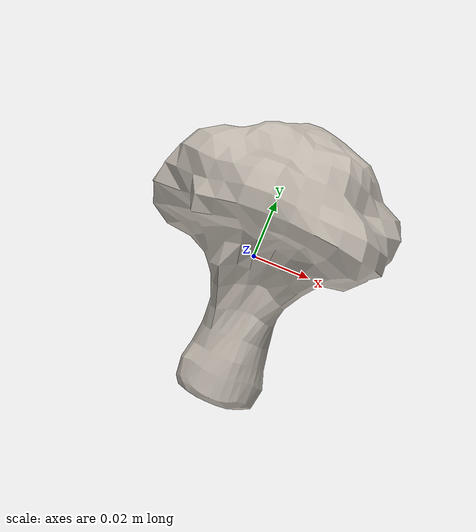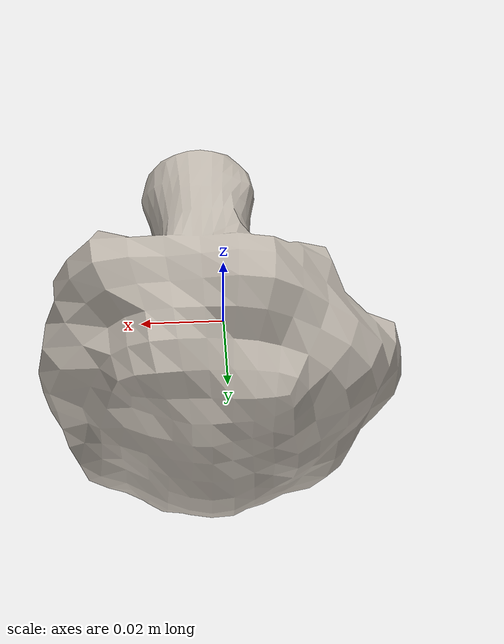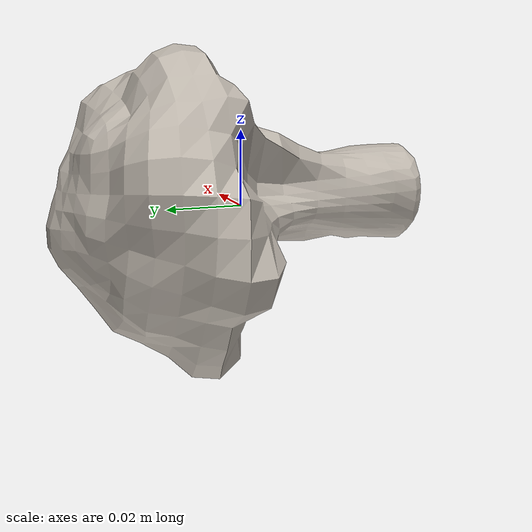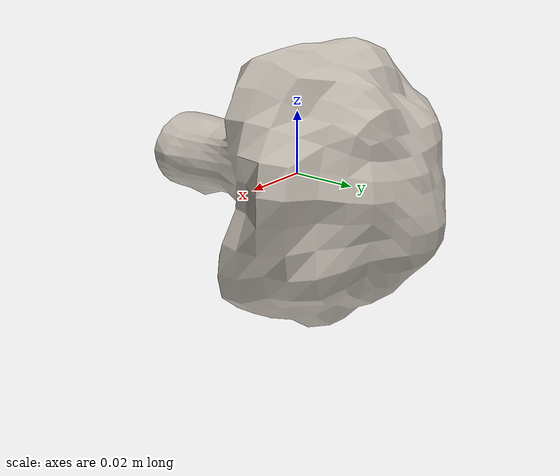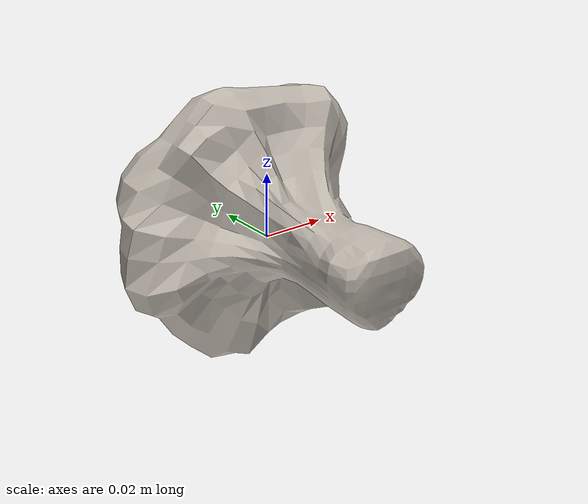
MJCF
<mujoco model="broccoli_6">
  <asset>
    <mesh file="visual/model_normalized_0.obj" name="model_normalized_0_vis" scale="0.1 0.1 0.1" refquat="0.4999999999999999 0.4999999999999999 0.49999999999999994 0.5"/>
    <mesh file="collision/model_normalized_collision_22.obj" name="model_normalized_collision_22._coll" scale="0.1 0.1 0.1" refquat="0.4999999999999999 0.4999999999999999 0.49999999999999994 0.5"/>
    <mesh file="collision/model_normalized_collision_23.obj" name="model_normalized_collision_23._coll" scale="0.1 0.1 0.1" refquat="0.4999999999999999 0.4999999999999999 0.49999999999999994 0.5"/>
    <mesh file="collision/model_normalized_collision_21.obj" name="model_normalized_collision_21._coll" scale="0.1 0.1 0.1" refquat="0.4999999999999999 0.4999999999999999 0.49999999999999994 0.5"/>
    <mesh file="collision/model_normalized_collision_20.obj" name="model_normalized_collision_20._coll" scale="0.1 0.1 0.1" refquat="0.4999999999999999 0.4999999999999999 0.49999999999999994 0.5"/>
    <mesh file="collision/model_normalized_collision_24.obj" name="model_normalized_collision_24._coll" scale="0.1 0.1 0.1" refquat="0.4999999999999999 0.4999999999999999 0.49999999999999994 0.5"/>
    <mesh file="collision/model_normalized_collision_30.obj" name="model_normalized_collision_30._coll" scale="0.1 0.1 0.1" refquat="0.4999999999999999 0.4999999999999999 0.49999999999999994 0.5"/>
    <mesh file="collision/model_normalized_collision_18.obj" name="model_normalized_collision_18._coll" scale="0.1 0.1 0.1" refquat="0.4999999999999999 0.4999999999999999 0.49999999999999994 0.5"/>
    <mesh file="collision/model_normalized_collision_19.obj" name="model_normalized_collision_19._coll" scale="0.1 0.1 0.1" refquat="0.4999999999999999 0.4999999999999999 0.49999999999999994 0.5"/>
    <mesh file="collision/model_normalized_collision_31.obj" name="model_normalized_collision_31._coll" scale="0.1 0.1 0.1" refquat="0.4999999999999999 0.4999999999999999 0.49999999999999994 0.5"/>
    <mesh file="collision/model_normalized_collision_25.obj" name="model_normalized_collision_25._coll" scale="0.1 0.1 0.1" refquat="0.4999999999999999 0.4999999999999999 0.49999999999999994 0.5"/>
    <mesh file="collision/model_normalized_collision_27.obj" name="model_normalized_collision_27._coll" scale="0.1 0.1 0.1" refquat="0.4999999999999999 0.4999999999999999 0.49999999999999994 0.5"/>
    <mesh file="collision/model_normalized_collision_26.obj" name="model_normalized_collision_26._coll" scale="0.1 0.1 0.1" refquat="0.4999999999999999 0.4999999999999999 0.49999999999999994 0.5"/>
    <mesh file="collision/model_normalized_collision_9.obj" name="model_normalized_collision_9._coll" scale="0.1 0.1 0.1" refquat="0.4999999999999999 0.4999999999999999 0.49999999999999994 0.5"/>
    <mesh file="collision/model_normalized_collision_8.obj" name="model_normalized_collision_8._coll" scale="0.1 0.1 0.1" refquat="0.4999999999999999 0.4999999999999999 0.49999999999999994 0.5"/>
    <mesh file="collision/model_normalized_collision_6.obj" name="model_normalized_collision_6._coll" scale="0.1 0.1 0.1" refquat="0.4999999999999999 0.4999999999999999 0.49999999999999994 0.5"/>
    <mesh file="collision/model_normalized_collision_7.obj" name="model_normalized_collision_7._coll" scale="0.1 0.1 0.1" refquat="0.4999999999999999 0.4999999999999999 0.49999999999999994 0.5"/>
    <mesh file="collision/model_normalized_collision_5.obj" name="model_normalized_collision_5._coll" scale="0.1 0.1 0.1" refquat="0.4999999999999999 0.4999999999999999 0.49999999999999994 0.5"/>
    <mesh file="collision/model_normalized_collision_4.obj" name="model_normalized_collision_4._coll" scale="0.1 0.1 0.1" refquat="0.4999999999999999 0.4999999999999999 0.49999999999999994 0.5"/>
    <mesh file="collision/model_normalized_collision_0.obj" name="model_normalized_collision_0._coll" scale="0.1 0.1 0.1" refquat="0.4999999999999999 0.4999999999999999 0.49999999999999994 0.5"/>
    <mesh file="collision/model_normalized_collision_1.obj" name="model_normalized_collision_1._coll" scale="0.1 0.1 0.1" refquat="0.4999999999999999 0.4999999999999999 0.49999999999999994 0.5"/>
    <mesh file="collision/model_normalized_collision_3.obj" name="model_normalized_collision_3._coll" scale="0.1 0.1 0.1" refquat="0.4999999999999999 0.4999999999999999 0.49999999999999994 0.5"/>
    <mesh file="collision/model_normalized_collision_2.obj" name="model_normalized_collision_2._coll" scale="0.1 0.1 0.1" refquat="0.4999999999999999 0.4999999999999999 0.49999999999999994 0.5"/>
    <mesh file="collision/model_normalized_collision_17.obj" name="model_normalized_collision_17._coll" scale="0.1 0.1 0.1" refquat="0.4999999999999999 0.4999999999999999 0.49999999999999994 0.5"/>
    <mesh file="collision/model_normalized_collision_16.obj" name="model_normalized_collision_16._coll" scale="0.1 0.1 0.1" refquat="0.4999999999999999 0.4999999999999999 0.49999999999999994 0.5"/>
    <mesh file="collision/model_normalized_collision_28.obj" name="model_normalized_collision_28._coll" scale="0.1 0.1 0.1" refquat="0.4999999999999999 0.4999999999999999 0.49999999999999994 0.5"/>
    <mesh file="collision/model_normalized_collision_14.obj" name="model_normalized_collision_14._coll" scale="0.1 0.1 0.1" refquat="0.4999999999999999 0.4999999999999999 0.49999999999999994 0.5"/>
    <mesh file="collision/model_normalized_collision_15.obj" name="model_normalized_collision_15._coll" scale="0.1 0.1 0.1" refquat="0.4999999999999999 0.4999999999999999 0.49999999999999994 0.5"/>
    <mesh file="collision/model_normalized_collision_29.obj" name="model_normalized_collision_29._coll" scale="0.1 0.1 0.1" refquat="0.4999999999999999 0.4999999999999999 0.49999999999999994 0.5"/>
    <mesh file="collision/model_normalized_collision_11.obj" name="model_normalized_collision_11._coll" scale="0.1 0.1 0.1" refquat="0.4999999999999999 0.4999999999999999 0.49999999999999994 0.5"/>
    <mesh file="collision/model_normalized_collision_10.obj" name="model_normalized_collision_10._coll" scale="0.1 0.1 0.1" refquat="0.4999999999999999 0.4999999999999999 0.49999999999999994 0.5"/>
    <mesh file="collision/model_normalized_collision_12.obj" name="model_normalized_collision_12._coll" scale="0.1 0.1 0.1" refquat="0.4999999999999999 0.4999999999999999 0.49999999999999994 0.5"/>
    <mesh file="collision/model_normalized_collision_13.obj" name="model_normalized_collision_13._coll" scale="0.1 0.1 0.1" refquat="0.4999999999999999 0.4999999999999999 0.49999999999999994 0.5"/>
    <texture type="2d" name="image0" file="visual/image0.png"/>
    <material name="Material.004" texture="image0" specular="0.5" shininess="0.013610682"/>
  </asset>
  <worldbody>
  <body>
      <body name="object">
        <geom solimp="0.998 0.998 0.001" solref="0.001 1" density="100" friction="0.95 0.3 0.1" type="mesh" mesh="model_normalized_0_vis" conaffinity="0" contype="0" group="1" material="Material.004"/>
        <geom solimp="0.998 0.998 0.001" solref="0.001 1" density="100" friction="0.95 0.3 0.1" type="mesh" mesh="model_normalized_collision_22._coll" group="0" rgba="0.8 0.8 0.8 0.0"/>
        <geom solimp="0.998 0.998 0.001" solref="0.001 1" density="100" friction="0.95 0.3 0.1" type="mesh" mesh="model_normalized_collision_23._coll" group="0" rgba="0.8 0.8 0.8 0.0"/>
        <geom solimp="0.998 0.998 0.001" solref="0.001 1" density="100" friction="0.95 0.3 0.1" type="mesh" mesh="model_normalized_collision_21._coll" group="0" rgba="0.8 0.8 0.8 0.0"/>
        <geom solimp="0.998 0.998 0.001" solref="0.001 1" density="100" friction="0.95 0.3 0.1" type="mesh" mesh="model_normalized_collision_20._coll" group="0" rgba="0.8 0.8 0.8 0.0"/>
        <geom solimp="0.998 0.998 0.001" solref="0.001 1" density="100" friction="0.95 0.3 0.1" type="mesh" mesh="model_normalized_collision_24._coll" group="0" rgba="0.8 0.8 0.8 0.0"/>
        <geom solimp="0.998 0.998 0.001" solref="0.001 1" density="100" friction="0.95 0.3 0.1" type="mesh" mesh="model_normalized_collision_30._coll" group="0" rgba="0.8 0.8 0.8 0.0"/>
        <geom solimp="0.998 0.998 0.001" solref="0.001 1" density="100" friction="0.95 0.3 0.1" type="mesh" mesh="model_normalized_collision_18._coll" group="0" rgba="0.8 0.8 0.8 0.0"/>
        <geom solimp="0.998 0.998 0.001" solref="0.001 1" density="100" friction="0.95 0.3 0.1" type="mesh" mesh="model_normalized_collision_19._coll" group="0" rgba="0.8 0.8 0.8 0.0"/>
        <geom solimp="0.998 0.998 0.001" solref="0.001 1" density="100" friction="0.95 0.3 0.1" type="mesh" mesh="model_normalized_collision_31._coll" group="0" rgba="0.8 0.8 0.8 0.0"/>
        <geom solimp="0.998 0.998 0.001" solref="0.001 1" density="100" friction="0.95 0.3 0.1" type="mesh" mesh="model_normalized_collision_25._coll" group="0" rgba="0.8 0.8 0.8 0.0"/>
        <geom solimp="0.998 0.998 0.001" solref="0.001 1" density="100" friction="0.95 0.3 0.1" type="mesh" mesh="model_normalized_collision_27._coll" group="0" rgba="0.8 0.8 0.8 0.0"/>
        <geom solimp="0.998 0.998 0.001" solref="0.001 1" density="100" friction="0.95 0.3 0.1" type="mesh" mesh="model_normalized_collision_26._coll" group="0" rgba="0.8 0.8 0.8 0.0"/>
        <geom solimp="0.998 0.998 0.001" solref="0.001 1" density="100" friction="0.95 0.3 0.1" type="mesh" mesh="model_normalized_collision_9._coll" group="0" rgba="0.8 0.8 0.8 0.0"/>
        <geom solimp="0.998 0.998 0.001" solref="0.001 1" density="100" friction="0.95 0.3 0.1" type="mesh" mesh="model_normalized_collision_8._coll" group="0" rgba="0.8 0.8 0.8 0.0"/>
        <geom solimp="0.998 0.998 0.001" solref="0.001 1" density="100" friction="0.95 0.3 0.1" type="mesh" mesh="model_normalized_collision_6._coll" group="0" rgba="0.8 0.8 0.8 0.0"/>
        <geom solimp="0.998 0.998 0.001" solref="0.001 1" density="100" friction="0.95 0.3 0.1" type="mesh" mesh="model_normalized_collision_7._coll" group="0" rgba="0.8 0.8 0.8 0.0"/>
        <geom solimp="0.998 0.998 0.001" solref="0.001 1" density="100" friction="0.95 0.3 0.1" type="mesh" mesh="model_normalized_collision_5._coll" group="0" rgba="0.8 0.8 0.8 0.0"/>
        <geom solimp="0.998 0.998 0.001" solref="0.001 1" density="100" friction="0.95 0.3 0.1" type="mesh" mesh="model_normalized_collision_4._coll" group="0" rgba="0.8 0.8 0.8 0.0"/>
        <geom solimp="0.998 0.998 0.001" solref="0.001 1" density="100" friction="0.95 0.3 0.1" type="mesh" mesh="model_normalized_collision_0._coll" group="0" rgba="0.8 0.8 0.8 0.0"/>
        <geom solimp="0.998 0.998 0.001" solref="0.001 1" density="100" friction="0.95 0.3 0.1" type="mesh" mesh="model_normalized_collision_1._coll" group="0" rgba="0.8 0.8 0.8 0.0"/>
        <geom solimp="0.998 0.998 0.001" solref="0.001 1" density="100" friction="0.95 0.3 0.1" type="mesh" mesh="model_normalized_collision_3._coll" group="0" rgba="0.8 0.8 0.8 0.0"/>
        <geom solimp="0.998 0.998 0.001" solref="0.001 1" density="100" friction="0.95 0.3 0.1" type="mesh" mesh="model_normalized_collision_2._coll" group="0" rgba="0.8 0.8 0.8 0.0"/>
        <geom solimp="0.998 0.998 0.001" solref="0.001 1" density="100" friction="0.95 0.3 0.1" type="mesh" mesh="model_normalized_collision_17._coll" group="0" rgba="0.8 0.8 0.8 0.0"/>
        <geom solimp="0.998 0.998 0.001" solref="0.001 1" density="100" friction="0.95 0.3 0.1" type="mesh" mesh="model_normalized_collision_16._coll" group="0" rgba="0.8 0.8 0.8 0.0"/>
        <geom solimp="0.998 0.998 0.001" solref="0.001 1" density="100" friction="0.95 0.3 0.1" type="mesh" mesh="model_normalized_collision_28._coll" group="0" rgba="0.8 0.8 0.8 0.0"/>
        <geom solimp="0.998 0.998 0.001" solref="0.001 1" density="100" friction="0.95 0.3 0.1" type="mesh" mesh="model_normalized_collision_14._coll" group="0" rgba="0.8 0.8 0.8 0.0"/>
        <geom solimp="0.998 0.998 0.001" solref="0.001 1" density="100" friction="0.95 0.3 0.1" type="mesh" mesh="model_normalized_collision_15._coll" group="0" rgba="0.8 0.8 0.8 0.0"/>
        <geom solimp="0.998 0.998 0.001" solref="0.001 1" density="100" friction="0.95 0.3 0.1" type="mesh" mesh="model_normalized_collision_29._coll" group="0" rgba="0.8 0.8 0.8 0.0"/>
        <geom solimp="0.998 0.998 0.001" solref="0.001 1" density="100" friction="0.95 0.3 0.1" type="mesh" mesh="model_normalized_collision_11._coll" group="0" rgba="0.8 0.8 0.8 0.0"/>
        <geom solimp="0.998 0.998 0.001" solref="0.001 1" density="100" friction="0.95 0.3 0.1" type="mesh" mesh="model_normalized_collision_10._coll" group="0" rgba="0.8 0.8 0.8 0.0"/>
        <geom solimp="0.998 0.998 0.001" solref="0.001 1" density="100" friction="0.95 0.3 0.1" type="mesh" mesh="model_normalized_collision_12._coll" group="0" rgba="0.8 0.8 0.8 0.0"/>
        <geom solimp="0.998 0.998 0.001" solref="0.001 1" density="100" friction="0.95 0.3 0.1" type="mesh" mesh="model_normalized_collision_13._coll" group="0" rgba="0.8 0.8 0.8 0.0"/>
      </body>
      <site rgba="0 0 0 0" size="0.005" pos="-0.0003005542407298555 -0.0002556501748032346 -0.05315406554291653" name="bottom_site"/>
      <site rgba="0 0 0 0" size="0.005" pos="-0.0003005542407298555 -0.0002556501748032346 0.013436821974345436" name="top_site"/>
      <site rgba="0 0 0 0" size="0.005" pos="0.0336466019093892 0.03929718886270651 0.00014137821571445381" name="horizontal_radius_site"/>
    </body>
    </worldbody>
</mujoco>
